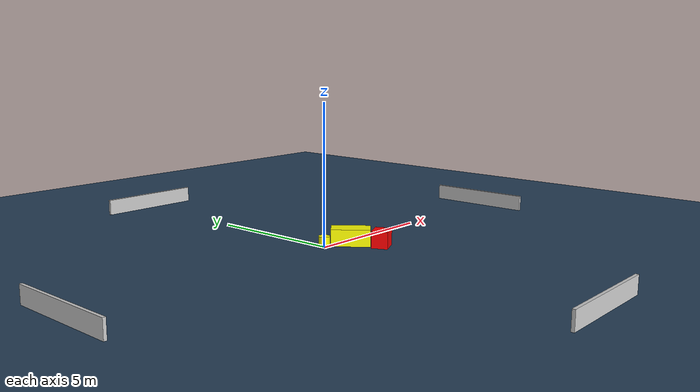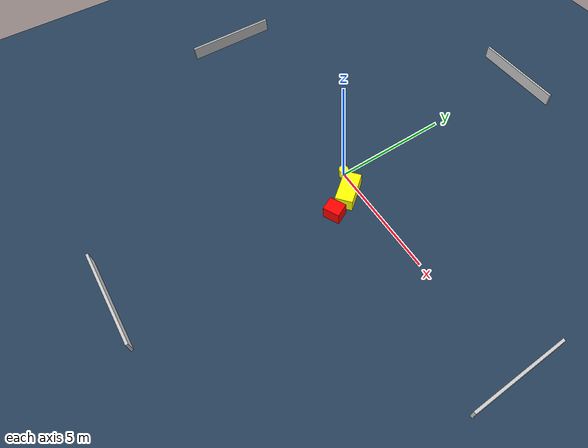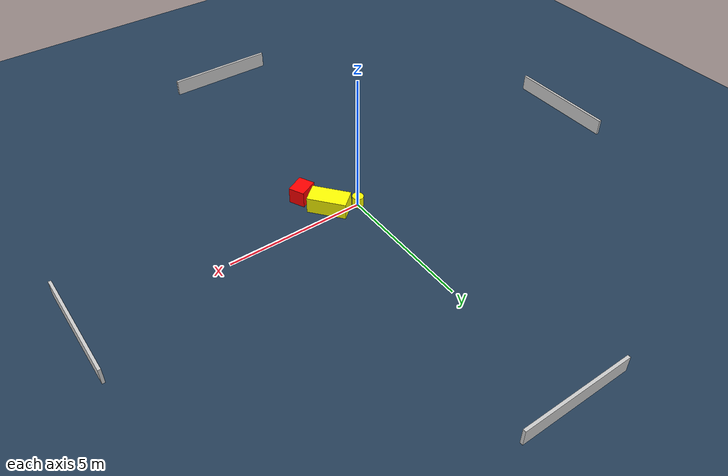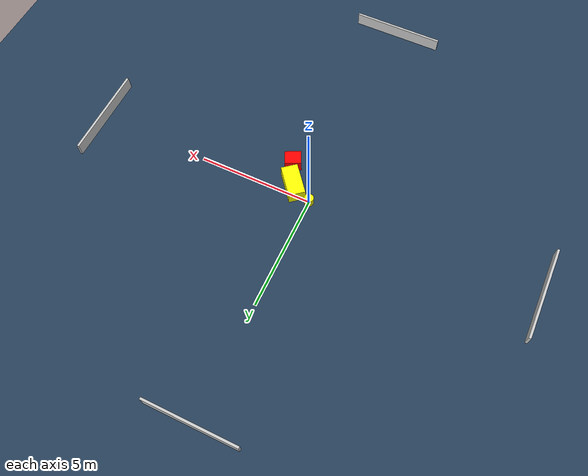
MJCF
<?xml version="1.0" ?>
<mujoco model="generated_environment">
  <option timestep="0.01" integrator="RK4" cone="elliptic"/>
  <default>
    <geom density="1"/>
  </default>
  <asset>
    <texture builtin="gradient" height="3072" name="skybox" rgb1="0.3 0.5 0.7" rgb2="0 0 0" type="skybox" width="512"/>
    <texture builtin="checker" height="300" name="groundplane" rgb1="0.2 0.3 0.4" rgb2="0.1 0.2 0.3" type="2d" width="300"/>
    <material name="groundplane" reflectance="0.2" texrepeat="5 5" texture="groundplane"/>
  </asset>
  <worldbody>
    <light dir="0 0 -1" directional="true" pos="0 0 1.5"/>
    <geom condim="3" friction="0.5 0.005 0.001" material="groundplane" name="floor" pos="0 0 0" size="0 0 0.05" type="plane"/>
    <body name="walls">
      <geom name="wall_1" condim="4" pos="-10.0 0.0 0.3" rgba="0.800000011920929 0.800000011920929 0.800000011920929 1.0" size="0.05 2.0 0.3" type="box"/>
      <geom name="wall_2" condim="4" pos="10.0 0.0 0.3" rgba="0.800000011920929 0.800000011920929 0.800000011920929 1.0" size="0.05 2.0 0.3" type="box"/>
      <geom name="wall_3" condim="4" pos="0.0 -10.0 0.3" rgba="0.800000011920929 0.800000011920929 0.800000011920929 1.0" size="2.0 0.05 0.3" type="box"/>
      <geom name="wall_4" condim="4" pos="0.0 10.0 0.3" rgba="0.800000011920929 0.800000011920929 0.800000011920929 1.0" size="2.0 0.05 0.3" type="box"/>
    </body>
    <body name="robot">
      <joint name="joint_x" type="slide" pos="0 0 0" axis="1 0 0"/>
      <joint name="joint_y" type="slide" pos="0 0 0" axis="0 1 0"/>
      <geom name="robot" type="cylinder" pos="0.0 0.0 0.2" size="0.2 0.2 0.0" mass="5.0" friction="1.0 0.005 0.0001" condim="4" rgba="1.0 1.0 0.0 1.0"/>
    </body>
    <body name="obstacle_1_movable">
      <geom name="obstacle_1_movable" condim="4" pos="0.9254483244885114 -0.40461349680860104 0.3" euler="0 0 219.3071387630615" friction="0.0 0.005 0.001" rgba="1.0 1.0 0.0 1.0" size="0.36053015341427375 0.69214197915897 0.3" type="box" mass="0.1"/>
      <joint type="free"/>
    </body>
    <body name="obstacle_2_static">
      <geom name="obstacle_2_static" condim="4" pos="1.4028592181271697 -1.39279855293455 0.3" euler="0 0 115.88268407029378" friction="0.0 0.005 0.001" rgba="1.0 0.0 0.0 1.0" size="0.2917725663186553 0.3521948704007947 0.3" type="box"/>
    </body>
  </worldbody>
  <actuator>
    <motor name="actuator_x" joint="joint_x" gear="1" ctrlrange="-1 1"/>
    <motor name="actuator_y" joint="joint_y" gear="1" ctrlrange="-1 1"/>
  </actuator>
</mujoco>
